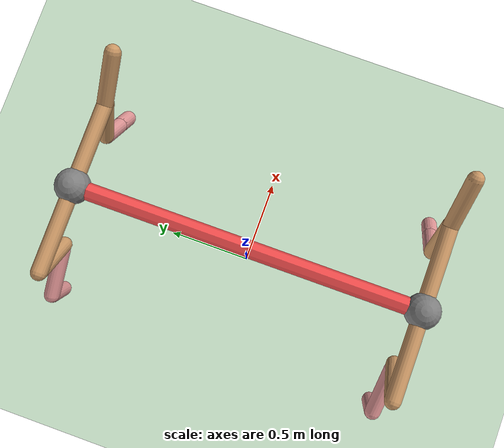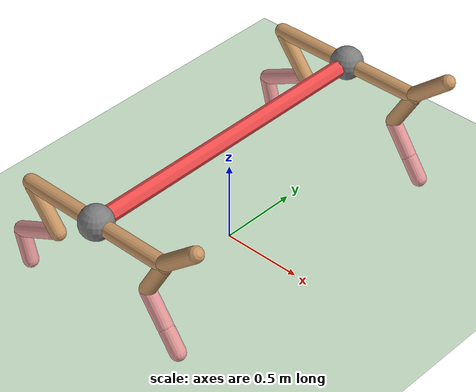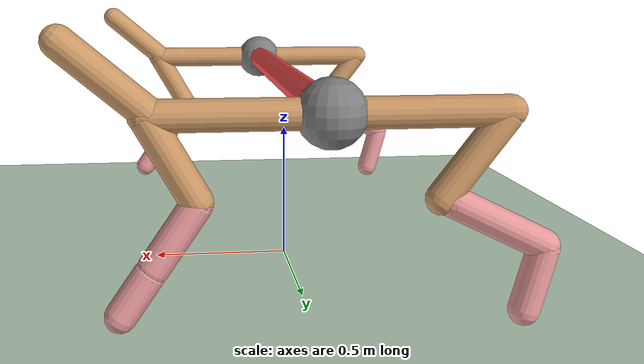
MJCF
<mujoco model="coupled_cheetah">
  <compiler angle="radian" coordinate="local" inertiafromgeom="true" settotalmass="14"/>
  <default>
    <joint armature=".1" damping=".01" limited="true" solimplimit="0 .8 .03" solreflimit=".02 1" stiffness="8"/>
    <geom conaffinity="0" condim="3" contype="1" friction=".4 .1 .1" rgba="0.8 0.6 .4 1" solimp="0.0 0.8 0.01" solref="0.02 1"/>
    <motor ctrllimited="true" ctrlrange="-1 1"/>
  </default>
  <size nstack="300000" nuser_geom="1"/>
  <option gravity="0 0 -9.81" timestep="0.01"/>
  <asset>
    <texture builtin="gradient" height="100" rgb1="1 1 1" rgb2="0 0 0" type="skybox" width="100"/>
    <texture builtin="flat" height="1278" mark="cross" markrgb="1 1 1" name="texgeom" random="0.01" rgb1="0.8 0.6 0.4" rgb2="0.8 0.6 0.4" type="cube" width="127"/>
    <texture builtin="checker" height="100" name="texplane" rgb1="0 0 0" rgb2="0.8 0.8 0.8" type="2d" width="100"/>
    <material name="MatPlane" reflectance="0.5" shininess="1" specular="1" texrepeat="60 60" texture="texplane"/>
    <material name="geom" texture="texgeom" texuniform="true"/>
  </asset>
  <worldbody>
    <light cutoff="100" diffuse="1 1 1" dir="-0 0 -1.3" directional="true" exponent="1" pos="0 0 1.3" specular=".1 .1 .1"/>
    <geom conaffinity="1" condim="3" material="MatPlane" name="floor" pos="0 0 0" rgba="0.8 0.9 0.8 1" size="40 40 40" type="plane"/>
    <body name="torso0" pos="0 -1 .7">
      <site name="t0" pos="0.0 0 0" size="0.1"/>
      <camera name="track0" mode="trackcom" pos="0 -3 0.3" xyaxes="1 0 0 0 0 1"/>
      <joint armature="0" axis="1 0 0" damping="0" limited="false" name="rootx0" pos="0 0 0" stiffness="0" type="slide"/>
      <joint armature="0" axis="0 0 1" damping="0" limited="false" name="rootz0" pos="0 0 0" stiffness="0" type="slide"/>
      <joint armature="0" axis="0 1 0" damping="0" limited="false" name="rooty0" pos="0 0 0" stiffness="0" type="hinge"/>
      <geom fromto="-.5 0 0 .5 0 0" name="torso0" size="0.046" type="capsule"/>
      <geom axisangle="0 1 0 .87" name="head0" pos=".6 0 .1" size="0.046 .15" type="capsule"/>
      <body name="bthigh0" pos="-.5 0 0">
        <joint axis="0 1 0" damping="6" name="bthigh0" pos="0 0 0" range="-.52 1.05" stiffness="240" type="hinge"/>
        <geom axisangle="0 1 0 -3.8" name="bthigh0" pos=".1 0 -.13" size="0.046 .145" type="capsule"/>
        <body name="bshin0" pos=".16 0 -.25">
          <joint axis="0 1 0" damping="4.5" name="bshin0" pos="0 0 0" range="-.785 .785" stiffness="180" type="hinge"/>
          <geom axisangle="0 1 0 -2.03" name="bshin0" pos="-.14 0 -.07" rgba="0.9 0.6 0.6 1" size="0.046 .15" type="capsule"/>
          <body name="bfoot0" pos="-.28 0 -.14">
            <joint axis="0 1 0" damping="3" name="bfoot0" pos="0 0 0" range="-.4 .785" stiffness="120" type="hinge"/>
            <geom axisangle="0 1 0 -.27" name="bfoot0" pos=".03 0 -.097" rgba="0.9 0.6 0.6 1" size="0.046 .094" type="capsule"/>
          </body>
        </body>
      </body>
      <body name="fthigh0" pos=".5 0 0">
        <joint axis="0 1 0" damping="4.5" name="fthigh0" pos="0 0 0" range="-1 .7" stiffness="180" type="hinge"/>
        <geom axisangle="0 1 0 .52" name="fthigh0" pos="-.07 0 -.12" size="0.046 .133" type="capsule"/>
        <body name="fshin0" pos="-.14 0 -.24">
          <joint axis="0 1 0" damping="3" name="fshin0" pos="0 0 0" range="-1.2 .87" stiffness="120" type="hinge"/>
          <geom axisangle="0 1 0 -.6" name="fshin0" pos=".065 0 -.09" rgba="0.9 0.6 0.6 1" size="0.046 .106" type="capsule"/>
          <body name="ffoot0" pos=".13 0 -.18">
            <joint axis="0 1 0" damping="1.5" name="ffoot0" pos="0 0 0" range="-.5 .5" stiffness="60" type="hinge"/>
            <geom axisangle="0 1 0 -.6" name="ffoot0" pos=".045 0 -.07" rgba="0.9 0.6 0.6 1" size="0.046 .07" type="capsule"/>
          </body>
        </body>
      </body>
    </body>
    <!-- second cheetah definition -->
    <body name="torso1" pos="0 1 .7">
      <site name="t1" pos="0 0 0" size="0.1"/>
      <camera name="track1" mode="trackcom" pos="0 -3 0.3" xyaxes="1 0 0 0 0 1"/>
      <joint armature="0" axis="1 0 0" damping="0" limited="false" name="rootx1" pos="0 0 0" stiffness="0" type="slide"/>
      <joint armature="0" axis="0 0 1" damping="0" limited="false" name="rootz1" pos="0 0 0" stiffness="0" type="slide"/>
      <joint armature="0" axis="0 1 0" damping="0" limited="false" name="rooty1" pos="0 0 0" stiffness="0" type="hinge"/>
      <geom fromto="-.5 0 0 .5 0 0" name="torso1" size="0.046" type="capsule"/>
      <geom axisangle="0 1 0 .87" name="head1" pos=".6 0 .1" size="0.046 .15" type="capsule"/>
      <body name="bthigh1" pos="-.5 0 0">
        <joint axis="0 1 0" damping="6" name="bthigh1" pos="0 0 0" range="-.52 1.05" stiffness="240" type="hinge"/>
        <geom axisangle="0 1 0 -3.8" name="bthigh1" pos=".1 0 -.13" size="0.046 .145" type="capsule"/>
        <body name="bshin1" pos=".16 0 -.25">
          <joint axis="0 1 0" damping="4.5" name="bshin1" pos="0 0 0" range="-.785 .785" stiffness="180" type="hinge"/>
          <geom axisangle="0 1 0 -2.03" name="bshin1" pos="-.14 0 -.07" rgba="0.9 0.6 0.6 1" size="0.046 .15" type="capsule"/>
          <body name="bfoot1" pos="-.28 0 -.14">
            <joint axis="0 1 0" damping="3" name="bfoot1" pos="0 0 0" range="-.4 .785" stiffness="120" type="hinge"/>
            <geom axisangle="0 1 0 -.27" name="bfoot1" pos=".03 0 -.097" rgba="0.9 0.6 0.6 1" size="0.046 .094" type="capsule"/>
          </body>
        </body>
      </body>
      <body name="fthigh1" pos=".5 0 0">
        <joint axis="0 1 0" damping="4.5" name="fthigh1" pos="0 0 0" range="-1 .7" stiffness="180" type="hinge"/>
        <geom axisangle="0 1 0 .52" name="fthigh1" pos="-.07 0 -.12" size="0.046 .133" type="capsule"/>
        <body name="fshin1" pos="-.14 0 -.24">
          <joint axis="0 1 0" damping="3" name="fshin1" pos="0 0 0" range="-1.2 .87" stiffness="120" type="hinge"/>
          <geom axisangle="0 1 0 -.6" name="fshin1" pos=".065 0 -.09" rgba="0.9 0.6 0.6 1" size="0.046 .106" type="capsule"/>
          <body name="ffoot1" pos=".13 0 -.18">
            <joint axis="0 1 0" damping="1.5" name="ffoot1" pos="0 0 0" range="-.5 .5" stiffness="60" type="hinge"/>
            <geom axisangle="0 1 0 -.6" name="ffoot1" pos=".045 0 -.07" rgba="0.9 0.6 0.6 1" size="0.046 .07" type="capsule"/>
          </body>
        </body>
      </body>
    </body>
  </worldbody>
  <tendon>
    <spatial name="tendon1" width="0.05" rgba=".95 .3 .3 1" limited="true" range="1.5 3.5" stiffness="0.1">
        <site site="t0"/>
        <site site="t1"/>
    </spatial>
  </tendon>-
  <actuator>
    <motor gear="120" joint="bthigh0" name="bthigh0"/>
    <motor gear="90" joint="bshin0" name="bshin0"/>
    <motor gear="60" joint="bfoot0" name="bfoot0"/>
    <motor gear="120" joint="fthigh0" name="fthigh0"/>
    <motor gear="60" joint="fshin0" name="fshin0"/>
    <motor gear="30" joint="ffoot0" name="ffoot0"/>
    <motor gear="120" joint="bthigh1" name="bthigh1"/>
    <motor gear="90" joint="bshin1" name="bshin1"/>
    <motor gear="60" joint="bfoot1" name="bfoot1"/>
    <motor gear="120" joint="fthigh1" name="fthigh1"/>
    <motor gear="60" joint="fshin1" name="fshin1"/>
    <motor gear="30" joint="ffoot1" name="ffoot1"/>
  </actuator>
</mujoco>
